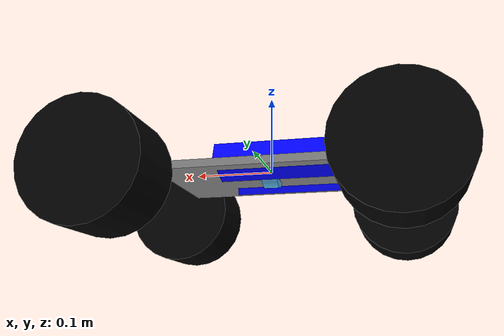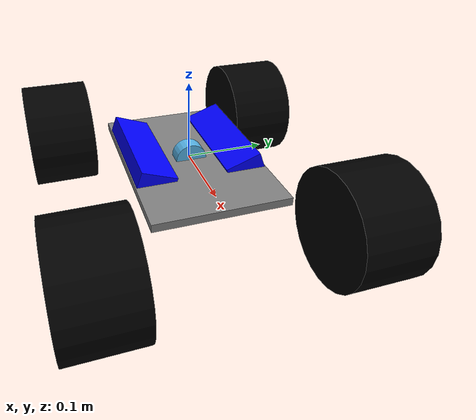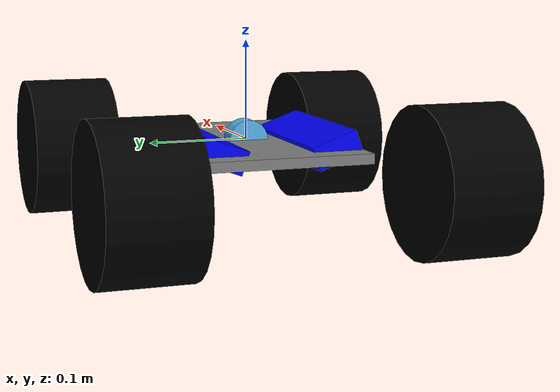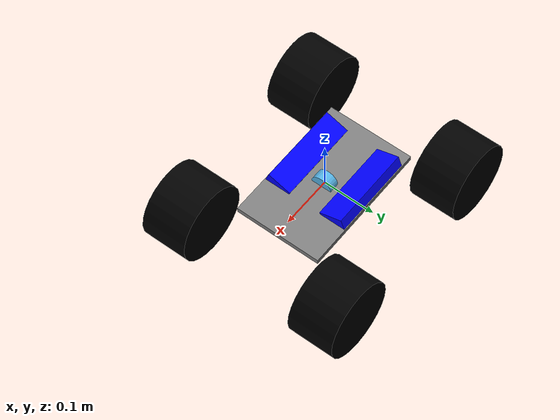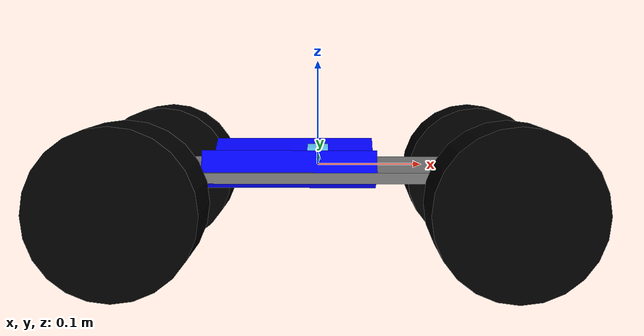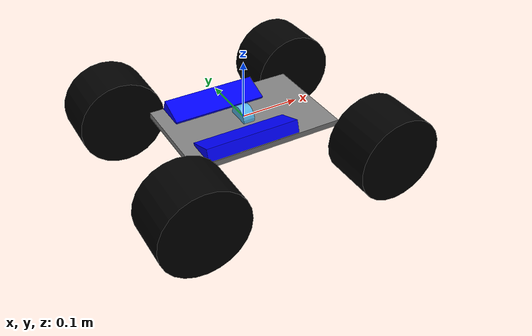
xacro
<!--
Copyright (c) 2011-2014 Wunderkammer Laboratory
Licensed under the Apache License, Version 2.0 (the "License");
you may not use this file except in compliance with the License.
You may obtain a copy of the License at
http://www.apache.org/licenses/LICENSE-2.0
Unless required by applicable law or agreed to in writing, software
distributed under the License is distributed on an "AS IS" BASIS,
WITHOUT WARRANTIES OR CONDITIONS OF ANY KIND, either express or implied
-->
<?xml version="1.0"?>

<robot name="protobot" xmlns:xacro="http://www.ros.org/wiki/xacro">
  <!-- Degree-to-radian conversions -->
  <xacro:property name="degrees_45" value="0.785398163"/>
  <xacro:property name="degrees_90" value="1.57079633"/>

  <!-- chassis_length is measured along the x axis, chassis_width
       along the y axis, and chassis_height along the z axis. -->
  <xacro:property name="chassis_length" value="0.258"/>
  <xacro:property name="chassis_width" value="0.168"/>
  <xacro:property name="chassis_height" value="0.01"/>
  <xacro:property name="chassis_mass" value="2.788"/>

  <xacro:property name="battery_x_offset" value="0.055"/>
  <xacro:property name="battery_dist" value="0.065"/>
  <xacro:property name="battery_comp_depth" value="0.02"/>
  <xacro:property name="battery_comp_angle" value="0.34906585"/>
  <xacro:property name="battery_length" value="0.16"/>
  <xacro:property name="battery_width" value="0.047"/>
  <xacro:property name="battery_height" value="0.024"/>
  <xacro:property name="battery_mass" value="0.5025"/>

  <xacro:property name="hub_dia" value="0.09652"/>
  <xacro:property name="tire_dia" value="0.14605"/>
  <xacro:property name="tire_width" value="0.0889"/>
  <xacro:property name="hex_hub_depth" value="0.01445"/>
  <xacro:property name="wheel_mass" value="0.29"/>

  <xacro:property name="wheelbase" value="0.335"/>
  <xacro:property name="hex_hub_dist" value="0.365"/>
  <xacro:property name="axle_length" value="0.03"/>
  <xacro:property name="wheel_travel" value="0.084"/>
  <xacro:property name="shock_z_offset" value="0.0655"/>

  <xacro:property name="shock_eff_limit" value="12.5106"/>
  <xacro:property name="shock_vel_limit" value="1000"/>

  <xacro:property name="axle_eff_limit" value="5.12766"/>
  <xacro:property name="axle_vel_limit" value="244.8696"/>

  <!-- These constants are used to simulate a Traxxas 2056 servo operated at
       6 V. servo_stall_torque is measured in N m. servo_no_load_speed is
       measured in rad/s. -->
  <xacro:property name="servo_stall_torque" value="0.5649"/>
  <xacro:property name="servo_no_load_speed" value="4.553"/>

  <material name="battery_mat">
    <color rgba="0 0 1 1"/>
  </material>
  <material name="chassis_mat">
    <color rgba="0.5 0.5 0.5 1"/>
  </material>
  <material name="tire_mat">
    <color rgba="0 0 0 1"/>
  </material>

  <!-- Null inertial element. This is needed to make the model work with
       Gazebo. -->
  <xacro:macro name="null_inertial">
    <inertial>
      <mass value="0.001"/>
      <inertia ixx="0.001" ixy="0" ixz="0" iyy="0.001" iyz="0" izz="0.001"/>
    </inertial>
  </xacro:macro>

  <!-- Inertia of a solid cuboid. Width is measured along the x axis, depth
       along the y axis, and height along the z axis. -->
  <xacro:macro name="solid_cuboid_inertial"
               params="width depth height mass *origin">
    <inertial>
      <xacro:insert_block name="origin"/>
      <mass value="${mass}"/>
      <inertia ixx="${mass * (depth * depth + height * height) / 12}"
               ixy="0" ixz="0"
               iyy="${mass * (width * width + height * height) / 12}"
               iyz="0"
               izz="${mass * (width * width + depth * depth) / 12}"/>
    </inertial>
  </xacro:macro>

  <xacro:macro name="thick_walled_tube_inertial"
               params="inner_rad outer_rad height mass">
    <inertial>
      <mass value="${mass}"/>
      <inertia ixx="${(1 / 12) * mass * (3 * (inner_rad * inner_rad +
                    outer_rad * outer_rad) + height * height)}"
               ixy="0" ixz="0"
               iyy="${(1 / 12) * mass * (3 * (inner_rad * inner_rad +
                    outer_rad * outer_rad) + height * height)}"
               iyz="0"
               izz="${mass * (inner_rad * inner_rad +
                    outer_rad * outer_rad) / 2}"/>
    </inertial>
  </xacro:macro>

  <!-- Battery -->
  <xacro:macro name="battery" params="prefix reflect">
    <joint name="chassis_to_${prefix}_battery" type="fixed">
      <parent link="chassis"/>
      <child link="${prefix}_battery_offset"/>
      <origin xyz="${battery_x_offset - battery_length / 2}
                   ${reflect * battery_dist / 2}
                   0"
              rpy="${reflect * battery_comp_angle} 0 0"/>
    </joint>

    <link name="${prefix}_battery_offset">
      <xacro:null_inertial/>
    </link>

    <joint name="offset_to_${prefix}_battery" type="fixed">
      <parent link="${prefix}_battery_offset"/>
      <child link="${prefix}_battery"/>
      <origin xyz="0
                   ${reflect * battery_width / 2}
                   ${(battery_height / 2) - battery_comp_depth}"/>
    </joint>

    <link name="${prefix}_battery">
      <visual>
        <geometry>
          <box size="${battery_length} ${battery_width} ${battery_height}"/>
        </geometry>
        <material name="battery_mat"/>
      </visual>

      <collision>
        <geometry>
          <box size="${battery_length} ${battery_width} ${battery_height}"/>
        </geometry>
      </collision>

      <xacro:solid_cuboid_inertial
         width="${battery_length}" depth="${battery_width}"
         height="${battery_height}" mass="${battery_mass}">
        <origin/>
      </xacro:solid_cuboid_inertial>
    </link>

    <gazebo reference="${prefix}_battery">
      <material>Gazebo/Blue</material>
    </gazebo>
  </xacro:macro>

  <!-- Shock absorber -->
  <xacro:macro name="shock"
               params="lr_prefix fr_prefix lr_reflect fr_reflect child">
    <joint name="${lr_prefix}_${fr_prefix}_shock" type="prismatic">
      <parent link="chassis"/>
      <child link="${child}"/>

      <origin xyz="${fr_reflect * wheelbase / 2}
                   ${lr_reflect * ((hex_hub_dist / 2) - axle_length)}
                   ${(wheel_travel / 2) - shock_z_offset}"/>
      <axis xyz="0 0 -1"/>
      <limit lower="${-wheel_travel / 2}" upper="${wheel_travel / 2}"
             effort="${shock_eff_limit}" velocity="${shock_vel_limit}"/>
    </joint>
    <transmission name="${lr_prefix}_${fr_prefix}_shock_trans">
      <type>transmission_interface/SimpleTransmission</type>
      <joint name="${lr_prefix}_${fr_prefix}_shock">
        <hardwareInterface>hardware_interface/EffortJointInterface</hardwareInterface>
      </joint>
      <actuator name="${lr_prefix}_${fr_prefix}_shock_act">
        <!-- This hardwareInterface element exists for compatibility
             with ROS Hydro. -->
        <hardwareInterface>hardware_interface/EffortJointInterface</hardwareInterface>
        <mechanicalReduction>1</mechanicalReduction>
      </actuator>
    </transmission>
  </xacro:macro>

  <!-- The "wheel" macro defines an axle carrier, axle, and wheel. -->
  <xacro:macro name="wheel" params="lr_prefix fr_prefix lr_reflect">
    <link name="${lr_prefix}_${fr_prefix}_axle_carrier">
      <xacro:null_inertial/>
    </link>

    <!-- The left and right axles have the same axis so that identical
         rotation values cause the wheels to rotate in the same direction. -->
    <joint name="${lr_prefix}_${fr_prefix}_axle" type="continuous">
      <parent link="${lr_prefix}_${fr_prefix}_axle_carrier"/>
      <child link="${lr_prefix}_${fr_prefix}_wheel"/>
      <origin rpy="${degrees_90} 0 0"/>
      <axis xyz="0 0 -1"/>
      <limit effort="${axle_eff_limit}" velocity="${axle_vel_limit}"/>
    </joint>
    <transmission name="${lr_prefix}_${fr_prefix}_axle_trans">
      <type>transmission_interface/SimpleTransmission</type>
      <joint name="${lr_prefix}_${fr_prefix}_axle">
        <hardwareInterface>hardware_interface/EffortJointInterface</hardwareInterface>
      </joint>
      <actuator name="${lr_prefix}_${fr_prefix}_axle_act">
        <!-- This hardwareInterface element exists for compatibility
             with ROS Hydro. -->
        <hardwareInterface>hardware_interface/EffortJointInterface</hardwareInterface>
        <mechanicalReduction>1</mechanicalReduction>
      </actuator>
    </transmission>

    <link name="${lr_prefix}_${fr_prefix}_wheel">
      <visual>
        <origin xyz="0
                     ${lr_reflect * (axle_length - (tire_width /
                     2 - hex_hub_depth))}
                     0"/>
        <geometry>
          <cylinder radius="${tire_dia / 2}" length="${tire_width}"/>
        </geometry>
        <material name="tire_mat"/>
      </visual>

      <collision>
        <origin xyz="0
                     ${lr_reflect * (axle_length - (tire_width /
                     2 - hex_hub_depth))}
                     0"/>
        <geometry>
          <cylinder radius="${tire_dia / 2}" length="${tire_width}"/>
        </geometry>
      </collision>

      <xacro:thick_walled_tube_inertial
          inner_rad="${hub_dia / 2}" outer_rad="${tire_dia / 2}"
          height="${tire_width}" mass="${wheel_mass}"/>
    </link>

    <gazebo reference="${lr_prefix}_${fr_prefix}_wheel">
      <material>Gazebo/Black</material>
    </gazebo>
  </xacro:macro>

  <!-- Front wheel -->
  <xacro:macro name="front_wheel"
               params="lr_prefix fr_prefix lr_reflect fr_reflect">
    <xacro:shock lr_prefix="${lr_prefix}" fr_prefix="${fr_prefix}"
                 lr_reflect="${lr_reflect}" fr_reflect="${fr_reflect}"
                 child="${lr_prefix}_steering_link"/>

    <link name="${lr_prefix}_steering_link">
      <xacro:null_inertial/>
    </link>

    <joint name="${lr_prefix}_steering_joint" type="revolute">
      <parent link="${lr_prefix}_steering_link"/>
      <child link="${lr_prefix}_${fr_prefix}_axle_carrier"/>
      <axis xyz="0 0 1"/>
      <limit lower="${-degrees_45}" upper="${degrees_45}"
             effort="${servo_stall_torque}" velocity="${servo_no_load_speed}"/>
    </joint>
    <transmission name="${lr_prefix}_steering_trans">
      <type>transmission_interface/SimpleTransmission</type>
      <joint name="${lr_prefix}_steering_joint">
        <hardwareInterface>hardware_interface/EffortJointInterface</hardwareInterface>
      </joint>
      <actuator name="${lr_prefix}_steering_act">
        <!-- This hardwareInterface element exists for compatibility
             with ROS Hydro. -->
        <hardwareInterface>hardware_interface/EffortJointInterface</hardwareInterface>
        <mechanicalReduction>1</mechanicalReduction>
      </actuator>
    </transmission>

    <xacro:wheel lr_prefix="${lr_prefix}" fr_prefix="${fr_prefix}"
                 lr_reflect="${lr_reflect}"/>
  </xacro:macro>

  <!-- Rear wheel -->
  <xacro:macro name="rear_wheel"
               params="lr_prefix fr_prefix lr_reflect fr_reflect">
    <xacro:shock lr_prefix="${lr_prefix}" fr_prefix="${fr_prefix}"
                 lr_reflect="${lr_reflect}" fr_reflect="${fr_reflect}"
                 child="${lr_prefix}_${fr_prefix}_axle_carrier"/>
    <xacro:wheel lr_prefix="${lr_prefix}" fr_prefix="${fr_prefix}"
                 lr_reflect="${lr_reflect}"/>
  </xacro:macro>

  <!-- base_link must have geometry so that its axes can be displayed in
       rviz. -->
  <link name="base_link">
    <visual>
      <geometry>
        <box size="0.01 0.01 0.01"/>
      </geometry>
      <material name="chassis_mat"/>
    </visual>
  </link>
  <gazebo reference="base_link">
    <material>Gazebo/Grey</material>
  </gazebo>

  <link name="caster_link">
	<visual>
		<geometry>
			<cylinder length="0.02" radius="0.02"/>
		</geometry>
	</visual>
	<inertial>
           <origin xyz="0 0 0" rpy="0 0 0"/>
           <mass value="0.01"/>
           <inertia ixx="0.1"  ixy="0"  ixz="0" iyy="0.1" iyz="0" izz="0.1" />
    	</inertial>
  </link>

  <!-- Chassis -->
  <link name="chassis">
    <visual>
      <origin xyz="0 0 ${-chassis_height / 2}"/>
      <geometry>
        <box size="${chassis_length} ${chassis_width} ${chassis_height}"/>
      </geometry>
      <material name="chassis_mat"/>
    </visual>

    <collision>
      <origin xyz="0 0 ${-chassis_height / 2}"/>
      <geometry>
        <box size="${chassis_length} ${chassis_width} ${chassis_height}"/>
      </geometry>
    </collision>

    <xacro:solid_cuboid_inertial
        width="${chassis_length}" depth="${chassis_width}"
        height="${chassis_height}" mass="${chassis_mass}">
      <origin xyz="0 0 ${-chassis_height / 2}"/>
    </xacro:solid_cuboid_inertial>
  </link>
  <gazebo reference="chassis">
    <material>Gazebo/Grey</material>
  </gazebo>

  <joint name="base_link_to_chassis" type="fixed">
    <parent link="base_link"/>
    <child link="chassis"/>
  </joint>

  <joint name="gps_imu_joint" type="fixed">
	<parent link="base_link"/>
	<child link="gps_imu_link"/>
	<origin xyz="0 0 0.5"/>
  </joint>

  <joint name="ir_joint" type="fixed">
	<parent link="base_link"/>
	<child link="ir_link"/>
	<origin xyz="0 0 -0.25"/>
  </joint>

  <!-- Batteries -->
  <xacro:battery prefix="left" reflect="1"/>
  <xacro:battery prefix="right" reflect="-1"/>

  <!-- Wheels -->
  <xacro:front_wheel lr_prefix="left" fr_prefix="front"
                     lr_reflect="1" fr_reflect="1"/>
  <xacro:front_wheel lr_prefix="right" fr_prefix="front"
                     lr_reflect="-1" fr_reflect="1"/>
  <xacro:rear_wheel lr_prefix="left" fr_prefix="rear"
                    lr_reflect="1" fr_reflect="-1"/>
  <xacro:rear_wheel lr_prefix="right" fr_prefix="rear"
                    lr_reflect="-1" fr_reflect="-1"/>

<link name="gps_imu_link">
</link>

<link name="camera_link">
</link>

<link name="camera_link_optical">
</link>

<link name="ir_link">
</link>

<joint name="caster_joint" type="fixed">
	<parent link="base_link"/>
	<child link="caster_link"/>
	<axis xyz="0 0 1"/>
	<origin xyz="0 0 0" rpy="0 1.57 0" />
</joint>

<joint name="camera_joint" type="fixed">
	<parent link="base_link"/>
	<child link="camera_link"/>
	<origin xyz="0 0 0.5" rpy="3.1415 3.1415 3.1415"/>
</joint>

<joint name="camera_optical_joint" type="fixed">
	<parent link="camera_link"/>
	<child link="camera_link_optical"/>
	<origin xyz="0 0 0" rpy="1.571 3.14 1.571"/>
</joint>

<gazebo>
     <plugin name="imu_plugin" filename="libgazebo_ros_imu.so">
      <alwaysOn>true</alwaysOn>
      <bodyName>gps_imu_link</bodyName>
      <topicName>imu/data</topicName>
      <serviceName>imu_service</serviceName>
      <gaussianNoise>0</gaussianNoise>
      <updateRate>20.0</updateRate>
    </plugin>
</gazebo>

<gazebo>
	<plugin name="gps_controller" filename="libhector_gazebo_ros_gps.so">
		<updateRate>5.0</updateRate>
		<bodyName>gps_imu_link</bodyName>
		<topicName>gps/fix</topicName>
		<frameId>gps_imu_link</frameId>
		<gaussianNoise>0.2</gaussianNoise>
	</plugin>
</gazebo>

<gazebo reference="camera_link">
     <sensor type="depth" name="depth_camera">
      <plugin name="camera_link_controller" filename="libgazebo_ros_openni_kinect.so">
          <baseline>0.2</baseline>
          <alwaysOn>true</alwaysOn>
          <updateRate>1.0</updateRate>
          <cameraName>camera</cameraName>
          <imageTopicName>color/image_raw</imageTopicName>
	  <cameraInfoTopicName>color/camera_info</cameraInfoTopicName>
	  <depthImageTopicName>depth/image_raw</depthImageTopicName>
	  <depthImageInfoTopicName>depth/camera_info</depthImageInfoTopicName>
	  <pointCloudTopicName>depth/pointcloud</pointCloudTopicName>
          <frameName>camera_link_optical</frameName>
          <pointCloudCutoff>0.1</pointCloudCutoff>
	  <pointCloudCutoffMax>5</pointCloudCutoffMax>
          <distortionK1>0.00000001</distortionK1>
          <distortionK2>0.00000001</distortionK2>
          <distortionK3>0.00000001</distortionK3>
          <distortionT1>0.00000001</distortionT1>
          <distortionT2>0.00000001</distortionT2>
          <CxPrime>0</CxPrime>
          <Cx>0</Cx>
          <Cy>0</Cy>
          <focalLength>0</focalLength>
          <hackBaseline>0</hackBaseline>
      </plugin>
     </sensor>
  </gazebo>

  <gazebo>
    <plugin name="gazebo_ros_control" filename="libgazebo_ros_control.so"/>
  </gazebo>
</robot>
